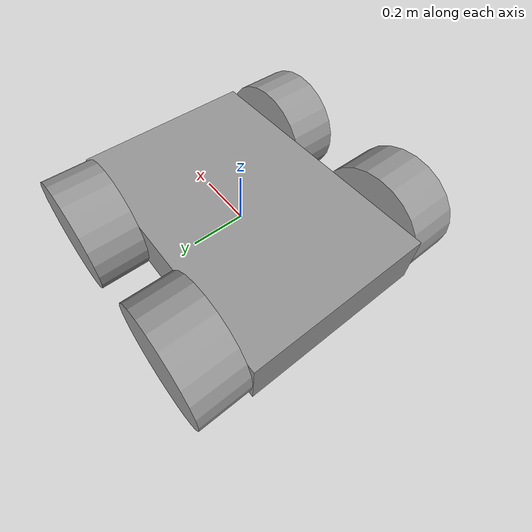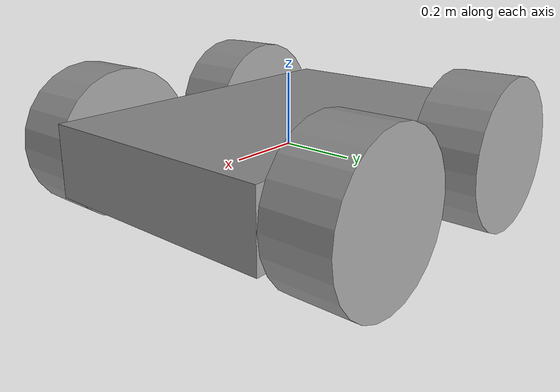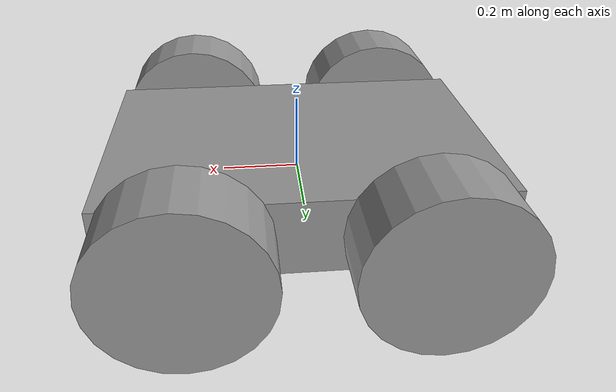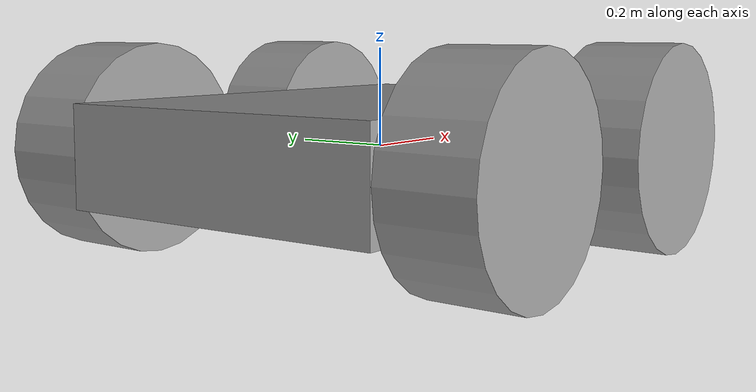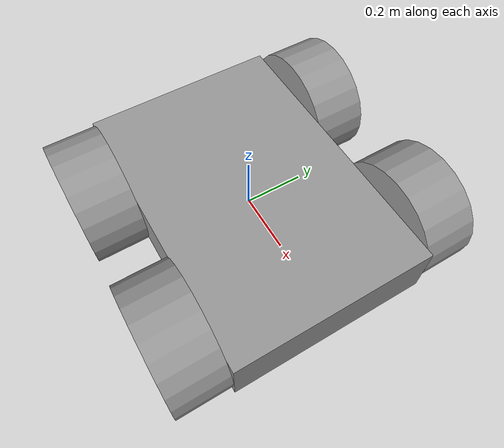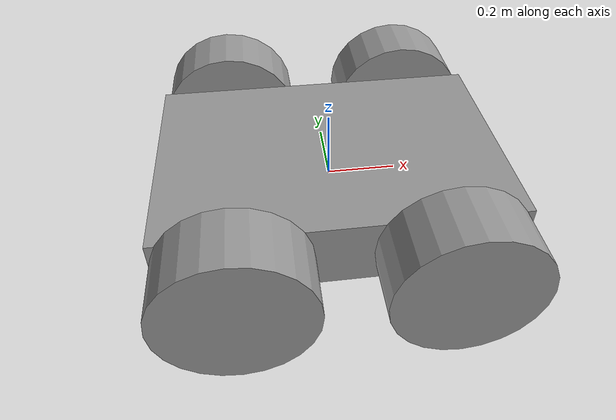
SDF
<?xml version='1.0'?>
<sdf version='1.6'>
  <model name='CartRobot'>
    <link name='link_0'>
      <pose frame=''>0 -0 0 0 -0 0</pose>
      <inertial>
        <mass>0.136311</mass>
        <inertia>
          <ixx>0.00574794</ixx>
          <ixy>0</ixy>
          <ixz>0</ixz>
          <iyy>0.0118121</iyy>
          <iyz>0</iyz>
          <izz>0.0166545</izz>
        </inertia>
        <pose frame=''>0 0 0 0 -0 0</pose>
      </inertial>
      <visual name='visual'>
        <pose frame=''>0 0 0 0 -0 0</pose>
        <geometry>
          <box>
            <size>1 0.682755 0.199659</size>
          </box>
        </geometry>
        <material>
          <lighting>1</lighting>
          <script>
            <uri>file://media/materials/scripts/gazebo.material</uri>
            <name>Gazebo/Grey</name>
          </script>
          <ambient>0.3 0.3 0.3 1</ambient>
          <diffuse>0.7 0.7 0.7 1</diffuse>
          <specular>0.01 0.01 0.01 1</specular>
          <emissive>0 0 0 1</emissive>
        </material>
        <cast_shadows>1</cast_shadows>
        <transparency>0</transparency>
      </visual>
      <collision name='collision'>
        <laser_retro>0</laser_retro>
        <max_contacts>10</max_contacts>
        <pose frame=''>0 0 0 0 -0 0</pose>
        <geometry>
          <box>
            <size>1 0.682755 0.199659</size>
          </box>
        </geometry>
        <surface>
          <friction>
            <ode>
              <mu>1</mu>
              <mu2>1</mu2>
              <fdir1>0 0 0</fdir1>
              <slip1>0</slip1>
              <slip2>0</slip2>
            </ode>
            <torsional>
              <coefficient>1</coefficient>
              <patch_radius>0</patch_radius>
              <surface_radius>0</surface_radius>
              <use_patch_radius>1</use_patch_radius>
              <ode>
                <slip>0</slip>
              </ode>
            </torsional>
          </friction>
          <bounce>
            <restitution_coefficient>0</restitution_coefficient>
            <threshold>1e+06</threshold>
          </bounce>
          <contact>
            <collide_without_contact>0</collide_without_contact>
            <collide_without_contact_bitmask>1</collide_without_contact_bitmask>
            <collide_bitmask>1</collide_bitmask>
            <ode>
              <soft_cfm>0</soft_cfm>
              <soft_erp>0.2</soft_erp>
              <kp>1e+13</kp>
              <kd>1</kd>
              <max_vel>0.01</max_vel>
              <min_depth>0</min_depth>
            </ode>
            <bullet>
              <split_impulse>1</split_impulse>
              <split_impulse_penetration_threshold>-0.01</split_impulse_penetration_threshold>
              <soft_cfm>0</soft_cfm>
              <soft_erp>0.2</soft_erp>
              <kp>1e+13</kp>
              <kd>1</kd>
            </bullet>
          </contact>
        </surface>
      </collision>
    </link>
    <link name='link_1'>
      <pose frame=''>-0.288872 0.43372 0 -1.56512 0 0</pose>
      <inertial>
        <mass>0.0325067</mass>
        <inertia>
          <ixx>0.000452309</ixx>
          <ixy>0</ixy>
          <ixz>0</ixz>
          <iyy>0.000452309</iyy>
          <iyz>0</iyz>
          <izz>0.000724583</izz>
        </inertia>
        <pose frame=''>0 0 0 0 -0 0</pose>
      </inertial>
      <visual name='visual'>
        <pose frame=''>0 0 0 0 -0 0</pose>
        <geometry>
          <cylinder>
            <radius>0.211128</radius>
            <length>0.182292</length>
          </cylinder>
        </geometry>
        <material>
          <lighting>1</lighting>
          <script>
            <uri>file://media/materials/scripts/gazebo.material</uri>
            <name>Gazebo/Grey</name>
          </script>
          <ambient>0.3 0.3 0.3 1</ambient>
          <diffuse>0.7 0.7 0.7 1</diffuse>
          <specular>0.01 0.01 0.01 1</specular>
          <emissive>0 0 0 1</emissive>
        </material>
        <cast_shadows>1</cast_shadows>
        <transparency>0</transparency>
      </visual>
      <collision name='collision'>
        <laser_retro>0</laser_retro>
        <max_contacts>10</max_contacts>
        <pose frame=''>0 0 0 0 -0 0</pose>
        <geometry>
          <cylinder>
            <radius>0.211128</radius>
            <length>0.182292</length>
          </cylinder>
        </geometry>
        <surface>
          <friction>
            <ode>
              <mu>1</mu>
              <mu2>1</mu2>
              <fdir1>0 0 0</fdir1>
              <slip1>0</slip1>
              <slip2>0</slip2>
            </ode>
            <torsional>
              <coefficient>1</coefficient>
              <patch_radius>0</patch_radius>
              <surface_radius>0</surface_radius>
              <use_patch_radius>1</use_patch_radius>
              <ode>
                <slip>0</slip>
              </ode>
            </torsional>
          </friction>
          <bounce>
            <restitution_coefficient>0</restitution_coefficient>
            <threshold>1e+06</threshold>
          </bounce>
          <contact>
            <collide_without_contact>0</collide_without_contact>
            <collide_without_contact_bitmask>1</collide_without_contact_bitmask>
            <collide_bitmask>1</collide_bitmask>
            <ode>
              <soft_cfm>0</soft_cfm>
              <soft_erp>0.2</soft_erp>
              <kp>1e+13</kp>
              <kd>1</kd>
              <max_vel>0.01</max_vel>
              <min_depth>0</min_depth>
            </ode>
            <bullet>
              <split_impulse>1</split_impulse>
              <split_impulse_penetration_threshold>-0.01</split_impulse_penetration_threshold>
              <soft_cfm>0</soft_cfm>
              <soft_erp>0.2</soft_erp>
              <kp>1e+13</kp>
              <kd>1</kd>
            </bullet>
          </contact>
        </surface>
      </collision>
    </link>
    <link name='link_1_clone'>
      <pose frame=''>0.288872 0.43372 0 -1.56512 0 0</pose>
      <inertial>
        <mass>0.0325067</mass>
        <inertia>
          <ixx>0.000452309</ixx>
          <ixy>0</ixy>
          <ixz>0</ixz>
          <iyy>0.000452309</iyy>
          <iyz>0</iyz>
          <izz>0.000724583</izz>
        </inertia>
        <pose frame=''>0 0 0 0 -0 0</pose>
      </inertial>
      <visual name='visual'>
        <pose frame=''>0 0 0 0 -0 0</pose>
        <geometry>
          <cylinder>
            <radius>0.211128</radius>
            <length>0.182292</length>
          </cylinder>
        </geometry>
        <material>
          <lighting>1</lighting>
          <script>
            <uri>file://media/materials/scripts/gazebo.material</uri>
            <name>Gazebo/Grey</name>
          </script>
          <ambient>0.3 0.3 0.3 1</ambient>
          <diffuse>0.7 0.7 0.7 1</diffuse>
          <specular>0.01 0.01 0.01 1</specular>
          <emissive>0 0 0 1</emissive>
          <shader type='pixel'/>
        </material>
        <cast_shadows>1</cast_shadows>
        <transparency>0</transparency>
      </visual>
      <collision name='collision'>
        <laser_retro>0</laser_retro>
        <max_contacts>10</max_contacts>
        <pose frame=''>0 0 0 0 -0 0</pose>
        <geometry>
          <cylinder>
            <radius>0.211128</radius>
            <length>0.182292</length>
          </cylinder>
        </geometry>
        <surface>
          <friction>
            <ode>
              <mu>1</mu>
              <mu2>1</mu2>
              <fdir1>0 0 0</fdir1>
              <slip1>0</slip1>
              <slip2>0</slip2>
            </ode>
            <torsional>
              <coefficient>1</coefficient>
              <patch_radius>0</patch_radius>
              <surface_radius>0</surface_radius>
              <use_patch_radius>1</use_patch_radius>
              <ode>
                <slip>0</slip>
              </ode>
            </torsional>
          </friction>
          <bounce>
            <restitution_coefficient>0</restitution_coefficient>
            <threshold>1e+06</threshold>
          </bounce>
          <contact>
            <collide_without_contact>0</collide_without_contact>
            <collide_without_contact_bitmask>1</collide_without_contact_bitmask>
            <collide_bitmask>1</collide_bitmask>
            <ode>
              <soft_cfm>0</soft_cfm>
              <soft_erp>0.2</soft_erp>
              <kp>1e+13</kp>
              <kd>1</kd>
              <max_vel>0.01</max_vel>
              <min_depth>0</min_depth>
            </ode>
            <bullet>
              <split_impulse>1</split_impulse>
              <split_impulse_penetration_threshold>-0.01</split_impulse_penetration_threshold>
              <soft_cfm>0</soft_cfm>
              <soft_erp>0.2</soft_erp>
              <kp>1e+13</kp>
              <kd>1</kd>
            </bullet>
          </contact>
        </surface>
      </collision>
    </link>
    <link name='link_1_clone_0'>
      <pose frame=''>-0.288872 -0.433721 0 -1.56512 0 0</pose>
      <inertial>
        <mass>0.0325067</mass>
        <inertia>
          <ixx>0.000452309</ixx>
          <ixy>0</ixy>
          <ixz>0</ixz>
          <iyy>0.000452309</iyy>
          <iyz>0</iyz>
          <izz>0.000724583</izz>
        </inertia>
        <pose frame=''>0 0 0 0 -0 0</pose>
      </inertial>
      <visual name='visual'>
        <pose frame=''>0 0 0 0 -0 0</pose>
        <geometry>
          <cylinder>
            <radius>0.211128</radius>
            <length>0.182292</length>
          </cylinder>
        </geometry>
        <material>
          <lighting>1</lighting>
          <script>
            <uri>file://media/materials/scripts/gazebo.material</uri>
            <name>Gazebo/Grey</name>
          </script>
          <ambient>0.3 0.3 0.3 1</ambient>
          <diffuse>0.7 0.7 0.7 1</diffuse>
          <specular>0.01 0.01 0.01 1</specular>
          <emissive>0 0 0 1</emissive>
          <shader type='pixel'/>
        </material>
        <cast_shadows>1</cast_shadows>
        <transparency>0</transparency>
      </visual>
      <collision name='collision'>
        <laser_retro>0</laser_retro>
        <max_contacts>10</max_contacts>
        <pose frame=''>0 0 0 0 -0 0</pose>
        <geometry>
          <cylinder>
            <radius>0.211128</radius>
            <length>0.182292</length>
          </cylinder>
        </geometry>
        <surface>
          <friction>
            <ode>
              <mu>1</mu>
              <mu2>1</mu2>
              <fdir1>0 0 0</fdir1>
              <slip1>0</slip1>
              <slip2>0</slip2>
            </ode>
            <torsional>
              <coefficient>1</coefficient>
              <patch_radius>0</patch_radius>
              <surface_radius>0</surface_radius>
              <use_patch_radius>1</use_patch_radius>
              <ode>
                <slip>0</slip>
              </ode>
            </torsional>
          </friction>
          <bounce>
            <restitution_coefficient>0</restitution_coefficient>
            <threshold>1e+06</threshold>
          </bounce>
          <contact>
            <collide_without_contact>0</collide_without_contact>
            <collide_without_contact_bitmask>1</collide_without_contact_bitmask>
            <collide_bitmask>1</collide_bitmask>
            <ode>
              <soft_cfm>0</soft_cfm>
              <soft_erp>0.2</soft_erp>
              <kp>1e+13</kp>
              <kd>1</kd>
              <max_vel>0.01</max_vel>
              <min_depth>0</min_depth>
            </ode>
            <bullet>
              <split_impulse>1</split_impulse>
              <split_impulse_penetration_threshold>-0.01</split_impulse_penetration_threshold>
              <soft_cfm>0</soft_cfm>
              <soft_erp>0.2</soft_erp>
              <kp>1e+13</kp>
              <kd>1</kd>
            </bullet>
          </contact>
        </surface>
      </collision>
    </link>
    <link name='link_1_clone_1'>
      <pose frame=''>0.288872 -0.433721 0 -1.56512 0 0</pose>
      <inertial>
        <mass>0.0325067</mass>
        <inertia>
          <ixx>0.000452309</ixx>
          <ixy>0</ixy>
          <ixz>0</ixz>
          <iyy>0.000452309</iyy>
          <iyz>0</iyz>
          <izz>0.000724583</izz>
        </inertia>
        <pose frame=''>0 0 0 0 -0 0</pose>
      </inertial>
      <visual name='visual'>
        <pose frame=''>0 0 0 0 -0 0</pose>
        <geometry>
          <cylinder>
            <radius>0.211128</radius>
            <length>0.182292</length>
          </cylinder>
        </geometry>
        <material>
          <lighting>1</lighting>
          <script>
            <uri>file://media/materials/scripts/gazebo.material</uri>
            <name>Gazebo/Grey</name>
          </script>
          <ambient>0.3 0.3 0.3 1</ambient>
          <diffuse>0.7 0.7 0.7 1</diffuse>
          <specular>0.01 0.01 0.01 1</specular>
          <emissive>0 0 0 1</emissive>
          <shader type='pixel'/>
        </material>
        <cast_shadows>1</cast_shadows>
        <transparency>0</transparency>
      </visual>
      <collision name='collision'>
        <laser_retro>0</laser_retro>
        <max_contacts>10</max_contacts>
        <pose frame=''>0 0 0 0 -0 0</pose>
        <geometry>
          <cylinder>
            <radius>0.211128</radius>
            <length>0.182292</length>
          </cylinder>
        </geometry>
        <surface>
          <friction>
            <ode>
              <mu>1</mu>
              <mu2>1</mu2>
              <fdir1>0 0 0</fdir1>
              <slip1>0</slip1>
              <slip2>0</slip2>
            </ode>
            <torsional>
              <coefficient>1</coefficient>
              <patch_radius>0</patch_radius>
              <surface_radius>0</surface_radius>
              <use_patch_radius>1</use_patch_radius>
              <ode>
                <slip>0</slip>
              </ode>
            </torsional>
          </friction>
          <bounce>
            <restitution_coefficient>0</restitution_coefficient>
            <threshold>1e+06</threshold>
          </bounce>
          <contact>
            <collide_without_contact>0</collide_without_contact>
            <collide_without_contact_bitmask>1</collide_without_contact_bitmask>
            <collide_bitmask>1</collide_bitmask>
            <ode>
              <soft_cfm>0</soft_cfm>
              <soft_erp>0.2</soft_erp>
              <kp>1e+13</kp>
              <kd>1</kd>
              <max_vel>0.01</max_vel>
              <min_depth>0</min_depth>
            </ode>
            <bullet>
              <split_impulse>1</split_impulse>
              <split_impulse_penetration_threshold>-0.01</split_impulse_penetration_threshold>
              <soft_cfm>0</soft_cfm>
              <soft_erp>0.2</soft_erp>
              <kp>1e+13</kp>
              <kd>1</kd>
            </bullet>
          </contact>
        </surface>
      </collision>
    </link>
    <joint name='link_0_JOINT_0' type='revolute'>
      <parent>link_0</parent>
      <child>link_1</child>
      <pose frame=''>0 0 0 0 -0 0</pose>
      <axis>
        <xyz>0 0 1</xyz>
        <use_parent_model_frame>0</use_parent_model_frame>
        <limit>
          <lower>-1.79769e+308</lower>
          <upper>1.79769e+308</upper>
          <effort>-1</effort>
          <velocity>-1</velocity>
        </limit>
        <dynamics>
          <spring_reference>0</spring_reference>
          <spring_stiffness>0</spring_stiffness>
          <damping>0</damping>
        </dynamics>
      </axis>
      <physics>
        <ode>
          <limit>
            <cfm>0</cfm>
            <erp>0.2</erp>
          </limit>
          <suspension>
            <cfm>0</cfm>
            <erp>0.2</erp>
          </suspension>
        </ode>
      </physics>
    </joint>
    <joint name='link_0_JOINT_1' type='revolute'>
      <parent>link_0</parent>
      <child>link_1_clone</child>
      <pose frame=''>0 0 0 0 -0 0</pose>
      <axis>
        <xyz>0 0 1</xyz>
        <use_parent_model_frame>0</use_parent_model_frame>
        <limit>
          <lower>-1.79769e+308</lower>
          <upper>1.79769e+308</upper>
          <effort>-1</effort>
          <velocity>-1</velocity>
        </limit>
        <dynamics>
          <spring_reference>0</spring_reference>
          <spring_stiffness>0</spring_stiffness>
          <damping>0</damping>
        </dynamics>
      </axis>
      <physics>
        <ode>
          <limit>
            <cfm>0</cfm>
            <erp>0.2</erp>
          </limit>
          <suspension>
            <cfm>0</cfm>
            <erp>0.2</erp>
          </suspension>
        </ode>
      </physics>
    </joint>
    <joint name='link_0_JOINT_2' type='revolute'>
      <parent>link_0</parent>
      <child>link_1_clone_0</child>
      <pose frame=''>0 0 0 0 -0 0</pose>
      <axis>
        <xyz>-0 -0 -1</xyz>
        <use_parent_model_frame>0</use_parent_model_frame>
        <limit>
          <lower>-1.79769e+308</lower>
          <upper>1.79769e+308</upper>
          <effort>-1</effort>
          <velocity>-1</velocity>
        </limit>
        <dynamics>
          <spring_reference>0</spring_reference>
          <spring_stiffness>0</spring_stiffness>
          <damping>0</damping>
        </dynamics>
      </axis>
      <physics>
        <ode>
          <limit>
            <cfm>0</cfm>
            <erp>0.2</erp>
          </limit>
          <suspension>
            <cfm>0</cfm>
            <erp>0.2</erp>
          </suspension>
        </ode>
      </physics>
    </joint>
    <joint name='link_0_JOINT_3' type='revolute'>
      <parent>link_0</parent>
      <child>link_1_clone_1</child>
      <pose frame=''>0 0 0 0 -0 0</pose>
      <axis>
        <xyz>-0 -0 -1</xyz>
        <use_parent_model_frame>0</use_parent_model_frame>
        <limit>
          <lower>-1.79769e+308</lower>
          <upper>1.79769e+308</upper>
          <effort>-1</effort>
          <velocity>-1</velocity>
        </limit>
        <dynamics>
          <spring_reference>0</spring_reference>
          <spring_stiffness>0</spring_stiffness>
          <damping>0</damping>
        </dynamics>
      </axis>
      <physics>
        <ode>
          <limit>
            <cfm>0</cfm>
            <erp>0.2</erp>
          </limit>
          <suspension>
            <cfm>0</cfm>
            <erp>0.2</erp>
          </suspension>
        </ode>
      </physics>
    </joint>
    <static>0</static>
    <allow_auto_disable>1</allow_auto_disable>
  </model>
</sdf>
